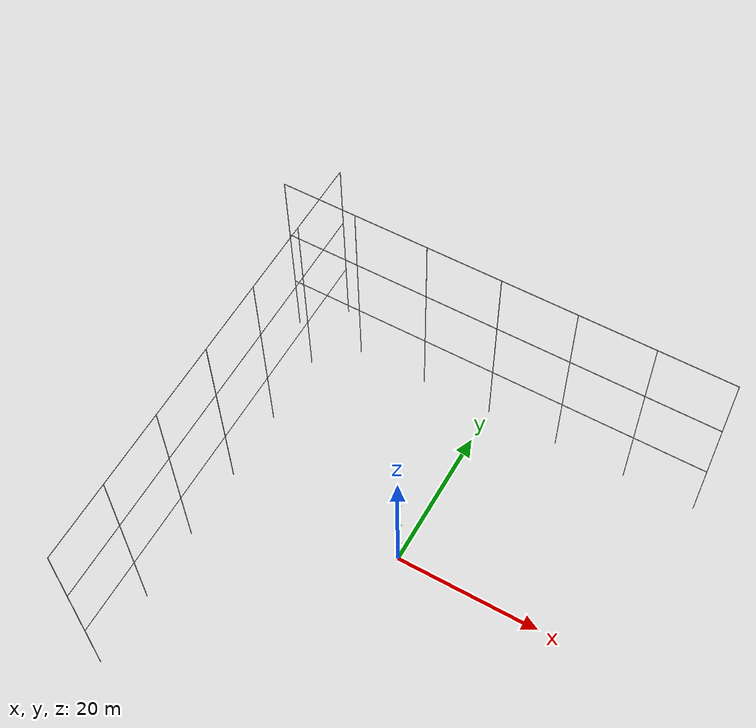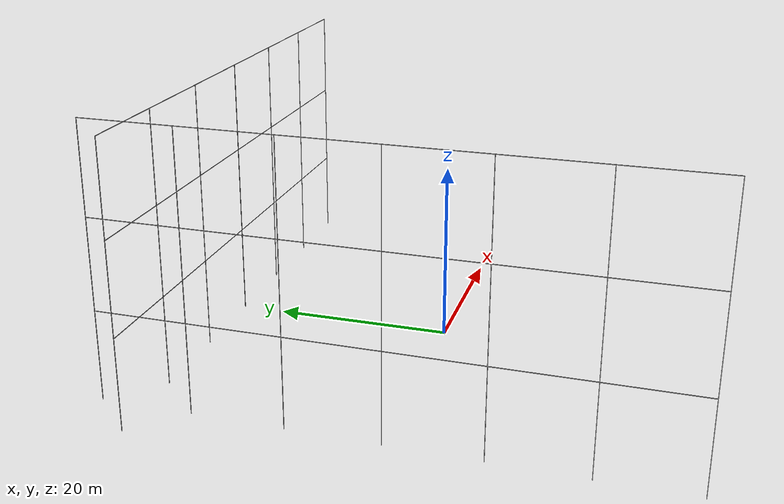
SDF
<?xml version="1.0" encoding="UTF-8"?>
<!-- Visual-only 3D reference: blue z-axis mast (rungs at 5/10/15 m) and
     two 10 m-cell wall grids behind the broadside and bow views. -->
<sdf version="1.10">
  <model name="flight_grid">
    <static>true</static>
    <link name="link">
      <visual name="mast_z_blue">
        <cast_shadows>false</cast_shadows>
        <pose>0 0 10 0 0 0</pose>
        <geometry><box><size>0.08 0.08 20</size></box></geometry>
        <material>
          <ambient>0.2 0.3 0.6 1</ambient>
          <diffuse>0.2 0.3 0.6 1</diffuse>
        </material>
      </visual>
      <visual name="mast_rung_5">
        <cast_shadows>false</cast_shadows>
        <pose>0 0 5 0 0 0</pose>
        <geometry><box><size>1.0 0.08 0.08</size></box></geometry>
        <material>
          <ambient>0.9 0.9 0.9 1</ambient>
          <diffuse>0.9 0.9 0.9 1</diffuse>
        </material>
      </visual>
      <visual name="mast_rung_10">
        <cast_shadows>false</cast_shadows>
        <pose>0 0 10 0 0 0</pose>
        <geometry><box><size>1.0 0.08 0.08</size></box></geometry>
        <material>
          <ambient>0.9 0.9 0.9 1</ambient>
          <diffuse>0.9 0.9 0.9 1</diffuse>
        </material>
      </visual>
      <visual name="mast_rung_15">
        <cast_shadows>false</cast_shadows>
        <pose>0 0 15 0 0 0</pose>
        <geometry><box><size>1.0 0.08 0.08</size></box></geometry>
        <material>
          <ambient>0.9 0.9 0.9 1</ambient>
          <diffuse>0.9 0.9 0.9 1</diffuse>
        </material>
      </visual>
      <visual name="wall_y_v_xm30">
        <cast_shadows>false</cast_shadows>
        <pose>-30 25 15 0 0 0</pose>
        <geometry><box><size>0.06 0.06 30</size></box></geometry>
        <material>
          <ambient>0.5 0.5 0.5 1</ambient>
          <diffuse>0.5 0.5 0.5 1</diffuse>
        </material>
      </visual>
      <visual name="wall_y_v_xm20">
        <cast_shadows>false</cast_shadows>
        <pose>-20 25 15 0 0 0</pose>
        <geometry><box><size>0.06 0.06 30</size></box></geometry>
        <material>
          <ambient>0.5 0.5 0.5 1</ambient>
          <diffuse>0.5 0.5 0.5 1</diffuse>
        </material>
      </visual>
      <visual name="wall_y_v_xm10">
        <cast_shadows>false</cast_shadows>
        <pose>-10 25 15 0 0 0</pose>
        <geometry><box><size>0.06 0.06 30</size></box></geometry>
        <material>
          <ambient>0.5 0.5 0.5 1</ambient>
          <diffuse>0.5 0.5 0.5 1</diffuse>
        </material>
      </visual>
      <visual name="wall_y_v_x0">
        <cast_shadows>false</cast_shadows>
        <pose>0 25 15 0 0 0</pose>
        <geometry><box><size>0.06 0.06 30</size></box></geometry>
        <material>
          <ambient>0.3 0.3 0.3 1</ambient>
          <diffuse>0.3 0.3 0.3 1</diffuse>
        </material>
      </visual>
      <visual name="wall_y_v_xp10">
        <cast_shadows>false</cast_shadows>
        <pose>10 25 15 0 0 0</pose>
        <geometry><box><size>0.06 0.06 30</size></box></geometry>
        <material>
          <ambient>0.5 0.5 0.5 1</ambient>
          <diffuse>0.5 0.5 0.5 1</diffuse>
        </material>
      </visual>
      <visual name="wall_y_v_xp20">
        <cast_shadows>false</cast_shadows>
        <pose>20 25 15 0 0 0</pose>
        <geometry><box><size>0.06 0.06 30</size></box></geometry>
        <material>
          <ambient>0.5 0.5 0.5 1</ambient>
          <diffuse>0.5 0.5 0.5 1</diffuse>
        </material>
      </visual>
      <visual name="wall_y_v_xp30">
        <cast_shadows>false</cast_shadows>
        <pose>30 25 15 0 0 0</pose>
        <geometry><box><size>0.06 0.06 30</size></box></geometry>
        <material>
          <ambient>0.5 0.5 0.5 1</ambient>
          <diffuse>0.5 0.5 0.5 1</diffuse>
        </material>
      </visual>
      <visual name="wall_y_h_z10">
        <cast_shadows>false</cast_shadows>
        <pose>0 25 10 0 0 0</pose>
        <geometry><box><size>60 0.06 0.06</size></box></geometry>
        <material>
          <ambient>0.5 0.5 0.5 1</ambient>
          <diffuse>0.5 0.5 0.5 1</diffuse>
        </material>
      </visual>
      <visual name="wall_y_h_z20">
        <cast_shadows>false</cast_shadows>
        <pose>0 25 20 0 0 0</pose>
        <geometry><box><size>60 0.06 0.06</size></box></geometry>
        <material>
          <ambient>0.5 0.5 0.5 1</ambient>
          <diffuse>0.5 0.5 0.5 1</diffuse>
        </material>
      </visual>
      <visual name="wall_y_h_z30">
        <cast_shadows>false</cast_shadows>
        <pose>0 25 30 0 0 0</pose>
        <geometry><box><size>60 0.06 0.06</size></box></geometry>
        <material>
          <ambient>0.5 0.5 0.5 1</ambient>
          <diffuse>0.5 0.5 0.5 1</diffuse>
        </material>
      </visual>
      <visual name="wall_x_v_ym30">
        <cast_shadows>false</cast_shadows>
        <pose>-25 -30 15 0 0 0</pose>
        <geometry><box><size>0.06 0.06 30</size></box></geometry>
        <material>
          <ambient>0.5 0.5 0.5 1</ambient>
          <diffuse>0.5 0.5 0.5 1</diffuse>
        </material>
      </visual>
      <visual name="wall_x_v_ym20">
        <cast_shadows>false</cast_shadows>
        <pose>-25 -20 15 0 0 0</pose>
        <geometry><box><size>0.06 0.06 30</size></box></geometry>
        <material>
          <ambient>0.5 0.5 0.5 1</ambient>
          <diffuse>0.5 0.5 0.5 1</diffuse>
        </material>
      </visual>
      <visual name="wall_x_v_ym10">
        <cast_shadows>false</cast_shadows>
        <pose>-25 -10 15 0 0 0</pose>
        <geometry><box><size>0.06 0.06 30</size></box></geometry>
        <material>
          <ambient>0.5 0.5 0.5 1</ambient>
          <diffuse>0.5 0.5 0.5 1</diffuse>
        </material>
      </visual>
      <visual name="wall_x_v_y0">
        <cast_shadows>false</cast_shadows>
        <pose>-25 0 15 0 0 0</pose>
        <geometry><box><size>0.06 0.06 30</size></box></geometry>
        <material>
          <ambient>0.3 0.3 0.3 1</ambient>
          <diffuse>0.3 0.3 0.3 1</diffuse>
        </material>
      </visual>
      <visual name="wall_x_v_yp10">
        <cast_shadows>false</cast_shadows>
        <pose>-25 10 15 0 0 0</pose>
        <geometry><box><size>0.06 0.06 30</size></box></geometry>
        <material>
          <ambient>0.5 0.5 0.5 1</ambient>
          <diffuse>0.5 0.5 0.5 1</diffuse>
        </material>
      </visual>
      <visual name="wall_x_v_yp20">
        <cast_shadows>false</cast_shadows>
        <pose>-25 20 15 0 0 0</pose>
        <geometry><box><size>0.06 0.06 30</size></box></geometry>
        <material>
          <ambient>0.5 0.5 0.5 1</ambient>
          <diffuse>0.5 0.5 0.5 1</diffuse>
        </material>
      </visual>
      <visual name="wall_x_v_yp30">
        <cast_shadows>false</cast_shadows>
        <pose>-25 30 15 0 0 0</pose>
        <geometry><box><size>0.06 0.06 30</size></box></geometry>
        <material>
          <ambient>0.5 0.5 0.5 1</ambient>
          <diffuse>0.5 0.5 0.5 1</diffuse>
        </material>
      </visual>
      <visual name="wall_x_h_z10">
        <cast_shadows>false</cast_shadows>
        <pose>-25 0 10 0 0 0</pose>
        <geometry><box><size>0.06 60 0.06</size></box></geometry>
        <material>
          <ambient>0.5 0.5 0.5 1</ambient>
          <diffuse>0.5 0.5 0.5 1</diffuse>
        </material>
      </visual>
      <visual name="wall_x_h_z20">
        <cast_shadows>false</cast_shadows>
        <pose>-25 0 20 0 0 0</pose>
        <geometry><box><size>0.06 60 0.06</size></box></geometry>
        <material>
          <ambient>0.5 0.5 0.5 1</ambient>
          <diffuse>0.5 0.5 0.5 1</diffuse>
        </material>
      </visual>
      <visual name="wall_x_h_z30">
        <cast_shadows>false</cast_shadows>
        <pose>-25 0 30 0 0 0</pose>
        <geometry><box><size>0.06 60 0.06</size></box></geometry>
        <material>
          <ambient>0.5 0.5 0.5 1</ambient>
          <diffuse>0.5 0.5 0.5 1</diffuse>
        </material>
      </visual>
    </link>
  </model>
</sdf>
